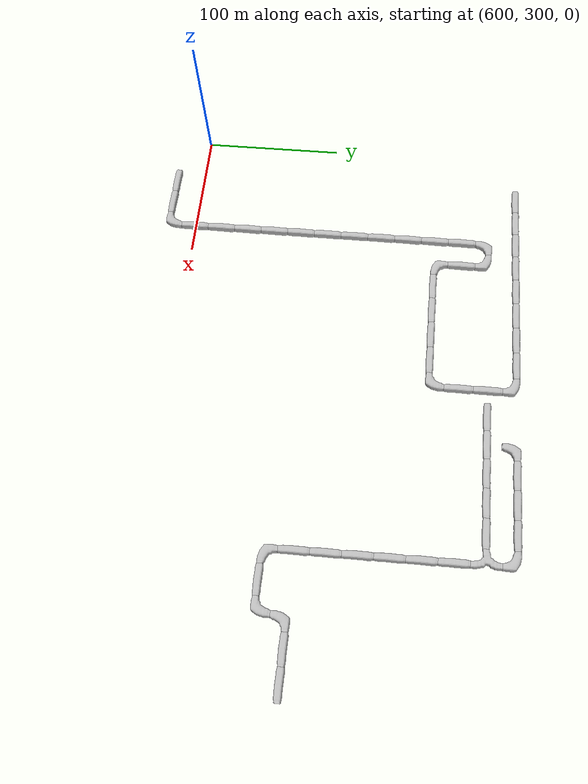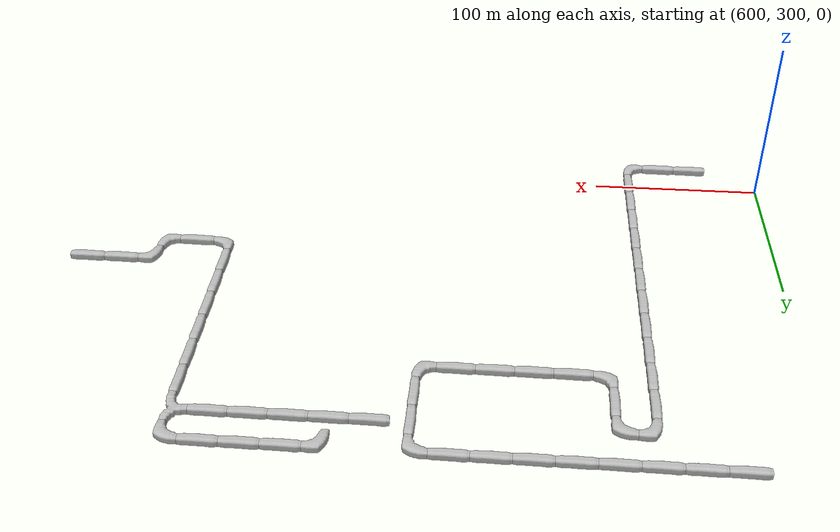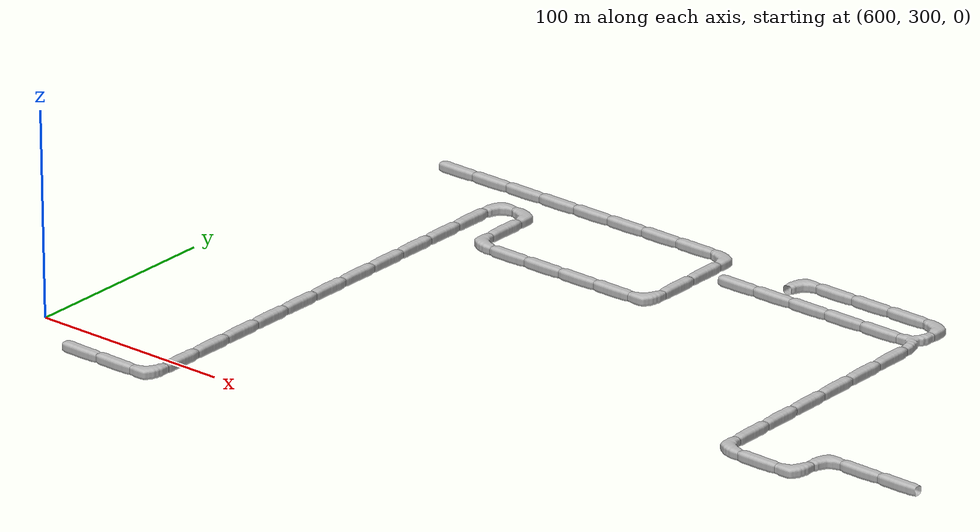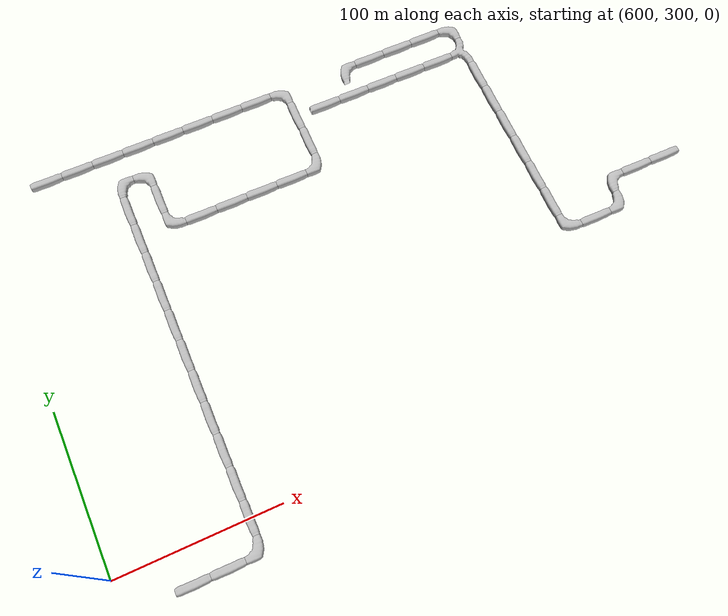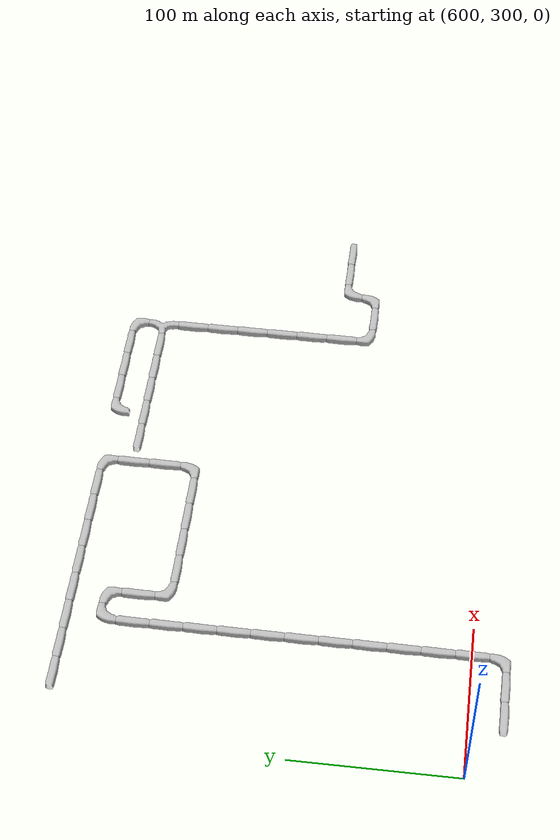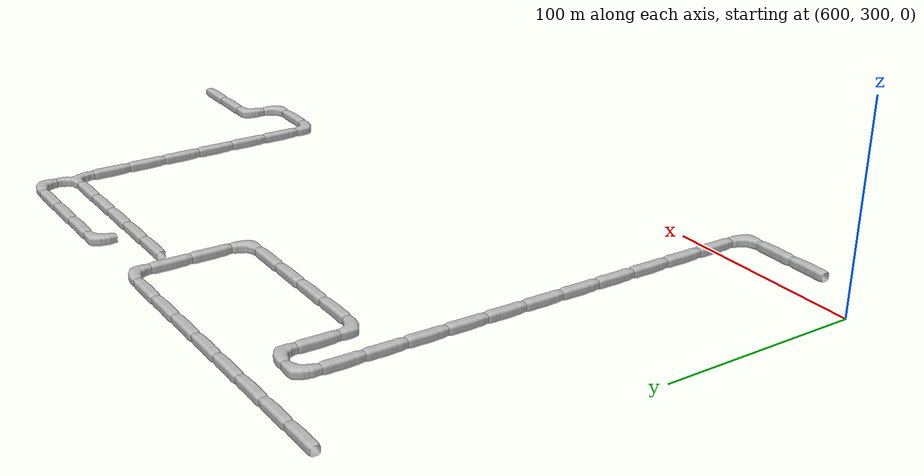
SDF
<sdf version="1.6">
 <world name="cave_32000_32">
  <include>
   <static>true</static>
   <name>cave_50_20</name>
   <pose>1000 400 0 0 0 1.5707963267948966</pose>
   <uri>model://cave_straight_20m</uri>
  </include>
  <include>
   <static>true</static>
   <name>cave_49_20</name>
   <pose>980 400 0 0 0 1.5707963267948966</pose>
   <uri>model://cave_straight_20m</uri>
  </include>
  <include>
   <static>true</static>
   <name>cave_48_20</name>
   <pose>960 400 0 0 0 -1.5707963267948966</pose>
   <uri>model://cave_L_20m</uri>
  </include>
  <include>
   <static>true</static>
   <name>cave_48_19</name>
   <pose>960 380 0 0 0 1.5707963267948966</pose>
   <uri>model://cave_L_20m</uri>
  </include>
  <include>
   <static>true</static>
   <name>cave_47_19</name>
   <pose>940 380 0 0 0 1.5707963267948966</pose>
   <uri>model://cave_straight_20m</uri>
  </include>
  <include>
   <static>true</static>
   <name>cave_46_19</name>
   <pose>920 380 0 0 0 0.0</pose>
   <uri>model://cave_L_20m</uri>
  </include>
  <include>
   <static>true</static>
   <name>cave_46_20</name>
   <pose>920 400 0 0 0 0.0</pose>
   <uri>model://cave_straight_20m</uri>
  </include>
  <include>
   <static>true</static>
   <name>cave_46_21</name>
   <pose>920 420 0 0 0 0.0</pose>
   <uri>model://cave_straight_20m</uri>
  </include>
  <include>
   <static>true</static>
   <name>cave_46_22</name>
   <pose>920 440 0 0 0 0.0</pose>
   <uri>model://cave_straight_20m</uri>
  </include>
  <include>
   <static>true</static>
   <name>cave_46_23</name>
   <pose>920 460 0 0 0 0.0</pose>
   <uri>model://cave_straight_20m</uri>
  </include>
  <include>
   <static>true</static>
   <name>cave_46_24</name>
   <pose>920 480 0 0 0 0.0</pose>
   <uri>model://cave_straight_20m</uri>
  </include>
  <include>
   <static>true</static>
   <name>cave_46_25</name>
   <pose>920 500 0 0 0 0.0</pose>
   <uri>model://cave_straight_20m</uri>
  </include>
  <include>
   <static>true</static>
   <name>cave_46_26</name>
   <pose>920 520 0 0 0 1.5707963267948966</pose>
   <uri>model://cave_3way_20m</uri>
  </include>
  <include>
   <static>true</static>
   <name>cave_45_26</name>
   <pose>900 520 0 0 0 1.5707963267948966</pose>
   <uri>model://cave_straight_20m</uri>
  </include>
  <include>
   <static>true</static>
   <name>cave_44_26</name>
   <pose>880 520 0 0 0 1.5707963267948966</pose>
   <uri>model://cave_straight_20m</uri>
  </include>
  <include>
   <static>true</static>
   <name>cave_43_26</name>
   <pose>860 520 0 0 0 1.5707963267948966</pose>
   <uri>model://cave_straight_20m</uri>
  </include>
  <include>
   <static>true</static>
   <name>cave_42_26</name>
   <pose>840 520 0 0 0 1.5707963267948966</pose>
   <uri>model://cave_straight_20m</uri>
  </include>
  <include>
   <static>true</static>
   <name>cave_41_26</name>
   <pose>820 520 0 0 0 1.5707963267948966</pose>
   <uri>model://cave_straight_20m</uri>
  </include>
  <include>
   <static>true</static>
   <name>cave_46_27</name>
   <pose>920 540 0 0 0 3.141592653589793</pose>
   <uri>model://cave_L_20m</uri>
  </include>
  <include>
   <static>true</static>
   <name>cave_45_27</name>
   <pose>900 540 0 0 0 1.5707963267948966</pose>
   <uri>model://cave_straight_20m</uri>
  </include>
  <include>
   <static>true</static>
   <name>cave_44_27</name>
   <pose>880 540 0 0 0 1.5707963267948966</pose>
   <uri>model://cave_straight_20m</uri>
  </include>
  <include>
   <static>true</static>
   <name>cave_43_27</name>
   <pose>860 540 0 0 0 1.5707963267948966</pose>
   <uri>model://cave_straight_20m</uri>
  </include>
  <include>
   <static>true</static>
   <name>cave_42_27</name>
   <pose>840 540 0 0 0 -1.5707963267948966</pose>
   <uri>model://cave_L_20m</uri>
  </include>
  <include>
   <static>true</static>
   <name>cave_32_14</name>
   <pose>640 280 0 0 0 1.5707963267948966</pose>
   <uri>model://cave_straight_20m</uri>
  </include>
  <include>
   <static>true</static>
   <name>cave_33_14</name>
   <pose>660 280 0 0 0 1.5707963267948966</pose>
   <uri>model://cave_straight_20m</uri>
  </include>
  <include>
   <static>true</static>
   <name>cave_34_14</name>
   <pose>680 280 0 0 0 1.5707963267948966</pose>
   <uri>model://cave_L_20m</uri>
  </include>
  <include>
   <static>true</static>
   <name>cave_34_15</name>
   <pose>680 300 0 0 0 0.0</pose>
   <uri>model://cave_straight_20m</uri>
  </include>
  <include>
   <static>true</static>
   <name>cave_34_16</name>
   <pose>680 320 0 0 0 0.0</pose>
   <uri>model://cave_straight_20m</uri>
  </include>
  <include>
   <static>true</static>
   <name>cave_34_17</name>
   <pose>680 340 0 0 0 0.0</pose>
   <uri>model://cave_straight_20m</uri>
  </include>
  <include>
   <static>true</static>
   <name>cave_34_18</name>
   <pose>680 360 0 0 0 0.0</pose>
   <uri>model://cave_straight_20m</uri>
  </include>
  <include>
   <static>true</static>
   <name>cave_34_19</name>
   <pose>680 380 0 0 0 0.0</pose>
   <uri>model://cave_straight_20m</uri>
  </include>
  <include>
   <static>true</static>
   <name>cave_34_20</name>
   <pose>680 400 0 0 0 0.0</pose>
   <uri>model://cave_straight_20m</uri>
  </include>
  <include>
   <static>true</static>
   <name>cave_34_21</name>
   <pose>680 420 0 0 0 0.0</pose>
   <uri>model://cave_straight_20m</uri>
  </include>
  <include>
   <static>true</static>
   <name>cave_34_22</name>
   <pose>680 440 0 0 0 0.0</pose>
   <uri>model://cave_straight_20m</uri>
  </include>
  <include>
   <static>true</static>
   <name>cave_34_23</name>
   <pose>680 460 0 0 0 0.0</pose>
   <uri>model://cave_straight_20m</uri>
  </include>
  <include>
   <static>true</static>
   <name>cave_34_24</name>
   <pose>680 480 0 0 0 0.0</pose>
   <uri>model://cave_straight_20m</uri>
  </include>
  <include>
   <static>true</static>
   <name>cave_34_25</name>
   <pose>680 500 0 0 0 0.0</pose>
   <uri>model://cave_straight_20m</uri>
  </include>
  <include>
   <static>true</static>
   <name>cave_34_26</name>
   <pose>680 520 0 0 0 -1.5707963267948966</pose>
   <uri>model://cave_L_20m</uri>
  </include>
  <include>
   <static>true</static>
   <name>cave_35_26</name>
   <pose>700 520 0 0 0 3.141592653589793</pose>
   <uri>model://cave_L_20m</uri>
  </include>
  <include>
   <static>true</static>
   <name>cave_35_25</name>
   <pose>700 500 0 0 0 0.0</pose>
   <uri>model://cave_straight_20m</uri>
  </include>
  <include>
   <static>true</static>
   <name>cave_35_24</name>
   <pose>700 480 0 0 0 0.0</pose>
   <uri>model://cave_L_20m</uri>
  </include>
  <include>
   <static>true</static>
   <name>cave_36_24</name>
   <pose>720 480 0 0 0 1.5707963267948966</pose>
   <uri>model://cave_straight_20m</uri>
  </include>
  <include>
   <static>true</static>
   <name>cave_37_24</name>
   <pose>740 480 0 0 0 1.5707963267948966</pose>
   <uri>model://cave_straight_20m</uri>
  </include>
  <include>
   <static>true</static>
   <name>cave_38_24</name>
   <pose>760 480 0 0 0 1.5707963267948966</pose>
   <uri>model://cave_straight_20m</uri>
  </include>
  <include>
   <static>true</static>
   <name>cave_39_24</name>
   <pose>780 480 0 0 0 1.5707963267948966</pose>
   <uri>model://cave_straight_20m</uri>
  </include>
  <include>
   <static>true</static>
   <name>cave_40_24</name>
   <pose>800 480 0 0 0 1.5707963267948966</pose>
   <uri>model://cave_L_20m</uri>
  </include>
  <include>
   <static>true</static>
   <name>cave_40_25</name>
   <pose>800 500 0 0 0 0.0</pose>
   <uri>model://cave_straight_20m</uri>
  </include>
  <include>
   <static>true</static>
   <name>cave_40_26</name>
   <pose>800 520 0 0 0 0.0</pose>
   <uri>model://cave_straight_20m</uri>
  </include>
  <include>
   <static>true</static>
   <name>cave_40_27</name>
   <pose>800 540 0 0 0 3.141592653589793</pose>
   <uri>model://cave_L_20m</uri>
  </include>
  <include>
   <static>true</static>
   <name>cave_39_27</name>
   <pose>780 540 0 0 0 1.5707963267948966</pose>
   <uri>model://cave_straight_20m</uri>
  </include>
  <include>
   <static>true</static>
   <name>cave_38_27</name>
   <pose>760 540 0 0 0 1.5707963267948966</pose>
   <uri>model://cave_straight_20m</uri>
  </include>
  <include>
   <static>true</static>
   <name>cave_37_27</name>
   <pose>740 540 0 0 0 1.5707963267948966</pose>
   <uri>model://cave_straight_20m</uri>
  </include>
  <include>
   <static>true</static>
   <name>cave_36_27</name>
   <pose>720 540 0 0 0 1.5707963267948966</pose>
   <uri>model://cave_straight_20m</uri>
  </include>
  <include>
   <static>true</static>
   <name>cave_35_27</name>
   <pose>700 540 0 0 0 1.5707963267948966</pose>
   <uri>model://cave_straight_20m</uri>
  </include>
  <include>
   <static>true</static>
   <name>cave_34_27</name>
   <pose>680 540 0 0 0 1.5707963267948966</pose>
   <uri>model://cave_straight_20m</uri>
  </include>
  <include>
   <static>true</static>
   <name>cave_33_27</name>
   <pose>660 540 0 0 0 1.5707963267948966</pose>
   <uri>model://cave_straight_20m</uri>
  </include>
  <include>
   <static>true</static>
   <name>cave_32_27</name>
   <pose>640 540 0 0 0 1.5707963267948966</pose>
   <uri>model://cave_straight_20m</uri>
  </include>
 </world>
</sdf>
